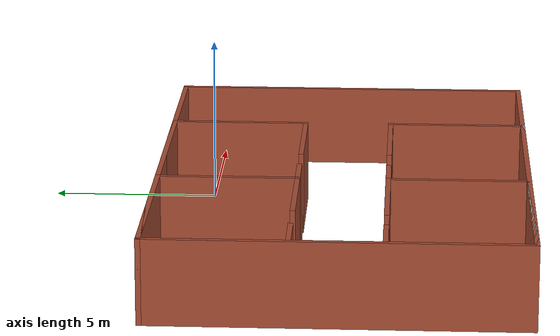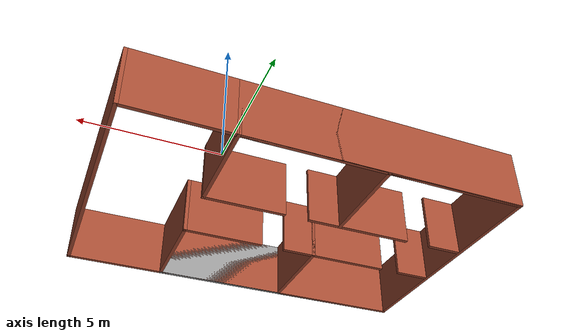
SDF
<?xml version='1.0'?>
<sdf version='1.7'>
  <model name='1'>
    <pose>-3.95536 -4.19082 0 0 -0 0</pose>
    <link name='Wall_22'>
      <collision name='Wall_22_Collision'>
        <geometry>
          <box>
            <size>16 0.15 2.5</size>
          </box>
        </geometry>
        <pose>0 0 1.25 0 -0 0</pose>
      </collision>
      <visual name='Wall_22_Visual'>
        <pose>0 0 1.25 0 -0 0</pose>
        <geometry>
          <box>
            <size>16 0.15 2.5</size>
          </box>
        </geometry>
        <material>
          <script>
            <uri>file://media/materials/scripts/gazebo.material</uri>
            <name>Gazebo/Bricks</name>
          </script>
          <ambient>1 1 1 1</ambient>
        </material>
        <meta>
          <layer>0</layer>
        </meta>
      </visual>
      <pose>0 -5.425 0 0 -0 0</pose>
    </link>
    <link name='Wall_23'>
      <collision name='Wall_23_Collision'>
        <geometry>
          <box>
            <size>11 0.15 2.5</size>
          </box>
        </geometry>
        <pose>0 0 1.25 0 -0 0</pose>
      </collision>
      <visual name='Wall_23_Visual'>
        <pose>0 0 1.25 0 -0 0</pose>
        <geometry>
          <box>
            <size>11 0.15 2.5</size>
          </box>
        </geometry>
        <material>
          <script>
            <uri>file://media/materials/scripts/gazebo.material</uri>
            <name>Gazebo/Bricks</name>
          </script>
          <ambient>1 1 1 1</ambient>
        </material>
        <meta>
          <layer>0</layer>
        </meta>
      </visual>
      <pose>7.925 -0 0 0 -0 1.5708</pose>
    </link>
    <link name='Wall_24'>
      <collision name='Wall_24_Collision'>
        <geometry>
          <box>
            <size>16 0.15 2.5</size>
          </box>
        </geometry>
        <pose>0 0 1.25 0 -0 0</pose>
      </collision>
      <visual name='Wall_24_Visual'>
        <pose>0 0 1.25 0 -0 0</pose>
        <geometry>
          <box>
            <size>16 0.15 2.5</size>
          </box>
        </geometry>
        <material>
          <script>
            <uri>file://media/materials/scripts/gazebo.material</uri>
            <name>Gazebo/Bricks</name>
          </script>
          <ambient>1 1 1 1</ambient>
        </material>
        <meta>
          <layer>0</layer>
        </meta>
      </visual>
      <pose>0 5.425 0 0 -0 3.14159</pose>
    </link>
    <link name='Wall_25'>
      <collision name='Wall_25_Collision'>
        <geometry>
          <box>
            <size>11 0.15 2.5</size>
          </box>
        </geometry>
        <pose>0 0 1.25 0 -0 0</pose>
      </collision>
      <visual name='Wall_25_Visual'>
        <pose>0 0 1.25 0 -0 0</pose>
        <geometry>
          <box>
            <size>11 0.15 2.5</size>
          </box>
        </geometry>
        <material>
          <script>
            <uri>file://media/materials/scripts/gazebo.material</uri>
            <name>Gazebo/Bricks</name>
          </script>
          <ambient>1 1 1 1</ambient>
        </material>
        <meta>
          <layer>0</layer>
        </meta>
      </visual>
      <pose>-7.925 -0 0 0 -0 -1.5708</pose>
    </link>
    <link name='Wall_27'>
      <collision name='Wall_27_Collision'>
        <geometry>
          <box>
            <size>6 0.15 2.5</size>
          </box>
        </geometry>
        <pose>0 0 1.25 0 -0 0</pose>
      </collision>
      <visual name='Wall_27_Visual'>
        <pose>0 0 1.25 0 -0 0</pose>
        <geometry>
          <box>
            <size>6 0.15 2.5</size>
          </box>
        </geometry>
        <material>
          <script>
            <uri>file://media/materials/scripts/gazebo.material</uri>
            <name>Gazebo/Grey</name>
          </script>
          <ambient>1 1 1 1</ambient>
        </material>
        <meta>
          <layer>0</layer>
        </meta>
      </visual>
      <pose>-5 -5.425 0 0 -0 0</pose>
    </link>
    <link name='Wall_33'>
      <collision name='Wall_33_Collision'>
        <geometry>
          <box>
            <size>6 0.15 2.5</size>
          </box>
        </geometry>
        <pose>0 0 1.25 0 -0 0</pose>
      </collision>
      <visual name='Wall_33_Visual'>
        <pose>0 0 1.25 0 -0 0</pose>
        <geometry>
          <box>
            <size>6 0.15 2.5</size>
          </box>
        </geometry>
        <material>
          <script>
            <uri>file://media/materials/scripts/gazebo.material</uri>
            <name>Gazebo/Bricks</name>
          </script>
          <ambient>1 1 1 1</ambient>
        </material>
        <meta>
          <layer>0</layer>
        </meta>
      </visual>
      <pose>-5 -5.425 0 0 -0 0</pose>
    </link>
    <link name='Wall_34'>
      <collision name='Wall_34_Collision'>
        <geometry>
          <box>
            <size>4.25 0.15 2.5</size>
          </box>
        </geometry>
        <pose>0 0 1.25 0 -0 0</pose>
      </collision>
      <visual name='Wall_34_Visual'>
        <pose>0 0 1.25 0 -0 0</pose>
        <geometry>
          <box>
            <size>4.25 0.15 2.5</size>
          </box>
        </geometry>
        <material>
          <script>
            <uri>file://media/materials/scripts/gazebo.material</uri>
            <name>Gazebo/Bricks</name>
          </script>
          <ambient>1 1 1 1</ambient>
        </material>
        <meta>
          <layer>0</layer>
        </meta>
      </visual>
      <pose>-2.075 -3.375 0 0 -0 1.5708</pose>
    </link>
    <link name='Wall_35'>
      <collision name='Wall_35_Collision'>
        <geometry>
          <box>
            <size>3.5 0.15 2.5</size>
          </box>
        </geometry>
        <pose>0 0 1.25 0 -0 0</pose>
      </collision>
      <visual name='Wall_35_Visual'>
        <pose>0 0 1.25 0 -0 0</pose>
        <geometry>
          <box>
            <size>3.5 0.15 2.5</size>
          </box>
        </geometry>
        <material>
          <script>
            <uri>file://media/materials/scripts/gazebo.material</uri>
            <name>Gazebo/Bricks</name>
          </script>
          <ambient>1 1 1 1</ambient>
        </material>
        <meta>
          <layer>0</layer>
        </meta>
      </visual>
      <pose>-3.75 -1.325 0 0 -0 3.14159</pose>
    </link>
    <link name='Wall_37'>
      <collision name='Wall_37_Collision'>
        <geometry>
          <box>
            <size>1.5 0.15 2.5</size>
          </box>
        </geometry>
        <pose>0 0 1.25 0 -0 0</pose>
      </collision>
      <visual name='Wall_37_Visual'>
        <pose>0 0 1.25 0 -0 0</pose>
        <geometry>
          <box>
            <size>1.5 0.15 2.5</size>
          </box>
        </geometry>
        <material>
          <script>
            <uri>file://media/materials/scripts/gazebo.material</uri>
            <name>Gazebo/Bricks</name>
          </script>
          <ambient>1 1 1 1</ambient>
        </material>
        <meta>
          <layer>0</layer>
        </meta>
      </visual>
      <pose>-7.1 -1.325 0 0 -0 0</pose>
    </link>
    <link name='Wall_39'>
      <collision name='Wall_39_Collision'>
        <geometry>
          <box>
            <size>6 0.15 2.5</size>
          </box>
        </geometry>
        <pose>0 0 1.25 0 -0 0</pose>
      </collision>
      <visual name='Wall_39_Visual'>
        <pose>0 0 1.25 0 -0 0</pose>
        <geometry>
          <box>
            <size>6 0.15 2.5</size>
          </box>
        </geometry>
        <material>
          <script>
            <uri>file://media/materials/scripts/gazebo.material</uri>
            <name>Gazebo/Grey</name>
          </script>
          <ambient>1 1 1 1</ambient>
        </material>
        <meta>
          <layer>0</layer>
        </meta>
      </visual>
      <pose>0.85 -5.425 0 0 -0 0</pose>
    </link>
    <link name='Wall_40'>
      <collision name='Wall_40_Collision'>
        <geometry>
          <box>
            <size>4.25 0.15 2.5</size>
          </box>
        </geometry>
        <pose>0 0 1.25 0 -0 0</pose>
      </collision>
      <visual name='Wall_40_Visual'>
        <pose>0 0 1.25 0 -0 0</pose>
        <geometry>
          <box>
            <size>4.25 0.15 2.5</size>
          </box>
        </geometry>
        <material>
          <script>
            <uri>file://media/materials/scripts/gazebo.material</uri>
            <name>Gazebo/Bricks</name>
          </script>
          <ambient>1 1 1 1</ambient>
        </material>
        <meta>
          <layer>0</layer>
        </meta>
      </visual>
      <pose>3.775 -3.375 0 0 -0 1.5708</pose>
    </link>
    <link name='Wall_41'>
      <collision name='Wall_41_Collision'>
        <geometry>
          <box>
            <size>3.5 0.15 2.5</size>
          </box>
        </geometry>
        <pose>0 0 1.25 0 -0 0</pose>
      </collision>
      <visual name='Wall_41_Visual'>
        <pose>0 0 1.25 0 -0 0</pose>
        <geometry>
          <box>
            <size>3.5 0.15 2.5</size>
          </box>
        </geometry>
        <material>
          <script>
            <uri>file://media/materials/scripts/gazebo.material</uri>
            <name>Gazebo/Bricks</name>
          </script>
          <ambient>1 1 1 1</ambient>
        </material>
        <meta>
          <layer>0</layer>
        </meta>
      </visual>
      <pose>2.1 -1.325 0 0 -0 3.14159</pose>
    </link>
    <link name='Wall_43'>
      <collision name='Wall_43_Collision'>
        <geometry>
          <box>
            <size>1.5 0.15 2.5</size>
          </box>
        </geometry>
        <pose>0 0 1.25 0 -0 0</pose>
      </collision>
      <visual name='Wall_43_Visual'>
        <pose>0 0 1.25 0 -0 0</pose>
        <geometry>
          <box>
            <size>1.5 0.15 2.5</size>
          </box>
        </geometry>
        <material>
          <script>
            <uri>file://media/materials/scripts/gazebo.material</uri>
            <name>Gazebo/Bricks</name>
          </script>
          <ambient>1 1 1 1</ambient>
        </material>
        <meta>
          <layer>0</layer>
        </meta>
      </visual>
      <pose>-1.4 -1.325 0 0 -0 0</pose>
    </link>
    <link name='Wall_45'>
      <collision name='Wall_45_Collision'>
        <geometry>
          <box>
            <size>6 0.15 2.5</size>
          </box>
        </geometry>
        <pose>0 0 1.25 0 -0 0</pose>
      </collision>
      <visual name='Wall_45_Visual'>
        <pose>0 0 1.25 0 -0 0</pose>
        <geometry>
          <box>
            <size>6 0.15 2.5</size>
          </box>
        </geometry>
        <material>
          <script>
            <uri>file://media/materials/scripts/gazebo.material</uri>
            <name>Gazebo/Bricks</name>
          </script>
          <ambient>1 1 1 1</ambient>
        </material>
        <meta>
          <layer>0</layer>
        </meta>
      </visual>
      <pose>-5 5.425 0 0 -0 0</pose>
    </link>
    <link name='Wall_46'>
      <collision name='Wall_46_Collision'>
        <geometry>
          <box>
            <size>4.25 0.15 2.5</size>
          </box>
        </geometry>
        <pose>0 0 1.25 0 -0 0</pose>
      </collision>
      <visual name='Wall_46_Visual'>
        <pose>0 0 1.25 0 -0 0</pose>
        <geometry>
          <box>
            <size>4.25 0.15 2.5</size>
          </box>
        </geometry>
        <material>
          <script>
            <uri>file://media/materials/scripts/gazebo.material</uri>
            <name>Gazebo/Bricks</name>
          </script>
          <ambient>1 1 1 1</ambient>
        </material>
        <meta>
          <layer>0</layer>
        </meta>
      </visual>
      <pose>-2.075 3.375 0 0 -0 -1.5708</pose>
    </link>
    <link name='Wall_47'>
      <collision name='Wall_47_Collision'>
        <geometry>
          <box>
            <size>3.25 0.15 2.5</size>
          </box>
        </geometry>
        <pose>0 0 1.25 0 -0 0</pose>
      </collision>
      <visual name='Wall_47_Visual'>
        <pose>0 0 1.25 0 -0 0</pose>
        <geometry>
          <box>
            <size>3.25 0.15 2.5</size>
          </box>
        </geometry>
        <material>
          <script>
            <uri>file://media/materials/scripts/gazebo.material</uri>
            <name>Gazebo/Bricks</name>
          </script>
          <ambient>1 1 1 1</ambient>
        </material>
        <meta>
          <layer>0</layer>
        </meta>
      </visual>
      <pose>-3.625 1.325 0 0 -0 3.14159</pose>
    </link>
    <link name='Wall_49'>
      <collision name='Wall_49_Collision'>
        <geometry>
          <box>
            <size>1.5 0.15 2.5</size>
          </box>
        </geometry>
        <pose>0 0 1.25 0 -0 0</pose>
      </collision>
      <visual name='Wall_49_Visual'>
        <pose>0 0 1.25 0 -0 0</pose>
        <geometry>
          <box>
            <size>1.5 0.15 2.5</size>
          </box>
        </geometry>
        <material>
          <script>
            <uri>file://media/materials/scripts/gazebo.material</uri>
            <name>Gazebo/Bricks</name>
          </script>
          <ambient>1 1 1 1</ambient>
        </material>
        <meta>
          <layer>0</layer>
        </meta>
      </visual>
      <pose>-7.1 1.325 0 0 -0 0</pose>
    </link>
    <link name='Wall_51'>
      <collision name='Wall_51_Collision'>
        <geometry>
          <box>
            <size>6 0.15 2.5</size>
          </box>
        </geometry>
        <pose>0 0 1.25 0 -0 0</pose>
      </collision>
      <visual name='Wall_51_Visual'>
        <pose>0 0 1.25 0 -0 0</pose>
        <geometry>
          <box>
            <size>6 0.15 2.5</size>
          </box>
        </geometry>
        <material>
          <script>
            <uri>file://media/materials/scripts/gazebo.material</uri>
            <name>Gazebo/Bricks</name>
          </script>
          <ambient>1 1 1 1</ambient>
        </material>
        <meta>
          <layer>0</layer>
        </meta>
      </visual>
      <pose>0.85 5.425 0 0 -0 0</pose>
    </link>
    <link name='Wall_52'>
      <collision name='Wall_52_Collision'>
        <geometry>
          <box>
            <size>4.25 0.15 2.5</size>
          </box>
        </geometry>
        <pose>0 0 1.25 0 -0 0</pose>
      </collision>
      <visual name='Wall_52_Visual'>
        <pose>0 0 1.25 0 -0 0</pose>
        <geometry>
          <box>
            <size>4.25 0.15 2.5</size>
          </box>
        </geometry>
        <material>
          <script>
            <uri>file://media/materials/scripts/gazebo.material</uri>
            <name>Gazebo/Bricks</name>
          </script>
          <ambient>1 1 1 1</ambient>
        </material>
        <meta>
          <layer>0</layer>
        </meta>
      </visual>
      <pose>3.775 3.375 0 0 -0 -1.5708</pose>
    </link>
    <link name='Wall_53'>
      <collision name='Wall_53_Collision'>
        <geometry>
          <box>
            <size>3.5 0.15 2.5</size>
          </box>
        </geometry>
        <pose>0 0 1.25 0 -0 0</pose>
      </collision>
      <visual name='Wall_53_Visual'>
        <pose>0 0 1.25 0 -0 0</pose>
        <geometry>
          <box>
            <size>3.5 0.15 2.5</size>
          </box>
        </geometry>
        <material>
          <script>
            <uri>file://media/materials/scripts/gazebo.material</uri>
            <name>Gazebo/Bricks</name>
          </script>
          <ambient>1 1 1 1</ambient>
        </material>
        <meta>
          <layer>0</layer>
        </meta>
      </visual>
      <pose>2.1 1.325 0 0 -0 3.14159</pose>
    </link>
    <link name='Wall_55'>
      <collision name='Wall_55_Collision'>
        <geometry>
          <box>
            <size>1.5 0.15 2.5</size>
          </box>
        </geometry>
        <pose>0 0 1.25 0 -0 0</pose>
      </collision>
      <visual name='Wall_55_Visual'>
        <pose>0 0 1.25 0 -0 0</pose>
        <geometry>
          <box>
            <size>1.5 0.15 2.5</size>
          </box>
        </geometry>
        <material>
          <script>
            <uri>file://media/materials/scripts/gazebo.material</uri>
            <name>Gazebo/Bricks</name>
          </script>
          <ambient>1 1 1 1</ambient>
        </material>
        <meta>
          <layer>0</layer>
        </meta>
      </visual>
      <pose>-1.4 1.325 0 0 -0 0</pose>
    </link>
    <static>1</static>
  </model>
</sdf>
